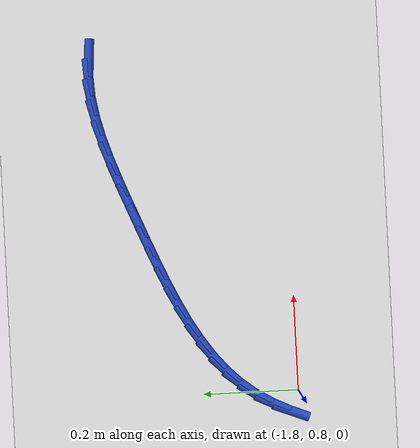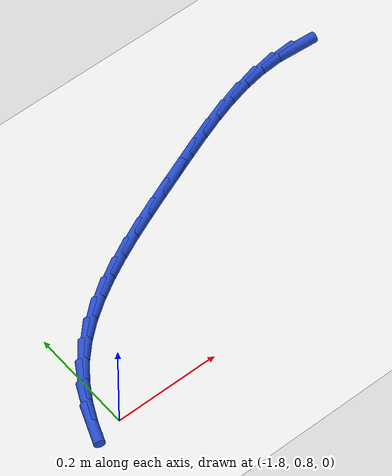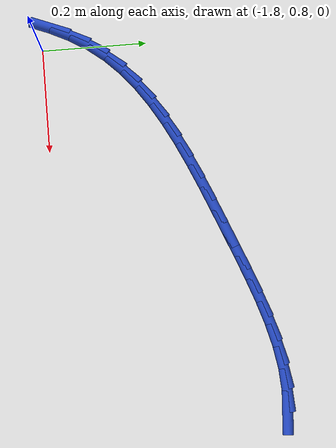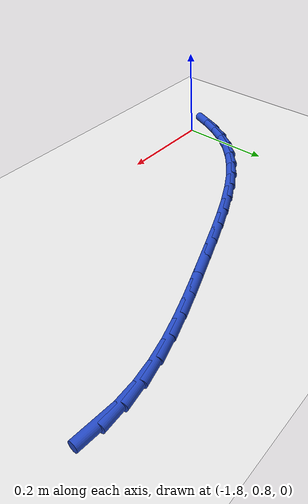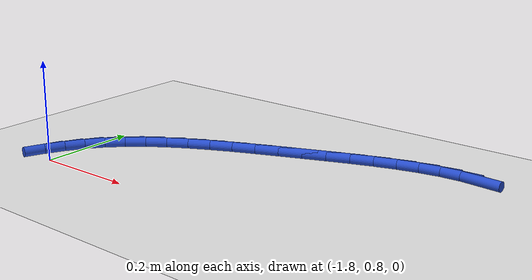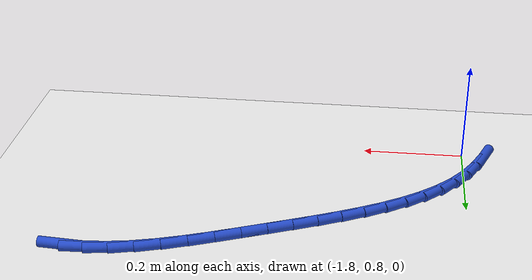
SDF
<sdf version="1.6">
 <world name="default">
  <model name="ground_plane">
   <static>1</static>
   <link name="link">
    <collision name="collision">
     <geometry><plane><normal>0 0 1</normal><size>100 100</size></plane></geometry>
     <surface><friction><ode><mu>100</mu><mu2>50</mu2></ode></friction></surface>
    </collision>
    <visual name="visual">
     <cast_shadows>0</cast_shadows>
     <geometry><plane><normal>0 0 1</normal><size>100 100</size></plane></geometry>
     <material>
      <script><uri>file://media/materials/scripts/gazebo.material</uri><name>Gazebo/WhiteGlow</name></script>
     </material>
    </visual>
   </link>
  </model>
  <model name="line">
   <link name="link_39">
    <pose>-1.0790798790291691 1.2066189303432555 0.01 0 1.57 -0.06929005652740972</pose>
    <collision name="collision">
     <geometry><cylinder><radius>0.01</radius><length>0.08</length></cylinder></geometry>
    </collision>
    <visual name="visual">
     <material>
      <script><name>Gazebo/Blue</name><uri>file://media/materials/scripts/gazebo.material</uri></script>
     </material>
     <geometry><cylinder><radius>0.01</radius><length>0.08</length></cylinder></geometry>
    </visual>
   </link>
   <link name="link_40">
    <pose>-1.1198511443910244 1.20944850344067 0.01 0 1.57 0.0634062857955353</pose>
    <collision name="collision">
     <geometry><cylinder><radius>0.01</radius><length>0.08</length></cylinder></geometry>
    </collision>
    <visual name="visual">
     <material>
      <script><name>Gazebo/Blue</name><uri>file://media/materials/scripts/gazebo.material</uri></script>
     </material>
     <geometry><cylinder><radius>0.01</radius><length>0.08</length></cylinder></geometry>
    </visual>
   </link>
   <link name="link_41">
    <pose>-1.161866000317936 1.2067809216424692 0.01 0 1.57 0.1687330409204674</pose>
    <collision name="collision">
     <geometry><cylinder><radius>0.01</radius><length>0.08</length></cylinder></geometry>
    </collision>
    <visual name="visual">
     <material>
      <script><name>Gazebo/Blue</name><uri>file://media/materials/scripts/gazebo.material</uri></script>
     </material>
     <geometry><cylinder><radius>0.01</radius><length>0.08</length></cylinder></geometry>
    </visual>
   </link>
   <link name="link_42">
    <pose>-1.204916245557059 1.1994471912357938 0.01 0 1.57 0.24925367229525305</pose>
    <collision name="collision">
     <geometry><cylinder><radius>0.01</radius><length>0.08</length></cylinder></geometry>
    </collision>
    <visual name="visual">
     <material>
      <script><name>Gazebo/Blue</name><uri>file://media/materials/scripts/gazebo.material</uri></script>
     </material>
     <geometry><cylinder><radius>0.01</radius><length>0.08</length></cylinder></geometry>
    </visual>
   </link>
   <link name="link_43">
    <pose>-1.2487936788555472 1.1882783185077836 0.01 0 1.57 0.308360027195604</pose>
    <collision name="collision">
     <geometry><cylinder><radius>0.01</radius><length>0.08</length></cylinder></geometry>
    </collision>
    <visual name="visual">
     <material>
      <script><name>Gazebo/Blue</name><uri>file://media/materials/scripts/gazebo.material</uri></script>
     </material>
     <geometry><cylinder><radius>0.01</radius><length>0.08</length></cylinder></geometry>
    </visual>
   </link>
   <link name="link_44">
    <pose>-1.2932900989605567 1.1741053097455787 0.01 0 1.57 0.3490904753763662</pose>
    <collision name="collision">
     <geometry><cylinder><radius>0.01</radius><length>0.08</length></cylinder></geometry>
    </collision>
    <visual name="visual">
     <material>
      <script><name>Gazebo/Blue</name><uri>file://media/materials/scripts/gazebo.material</uri></script>
     </material>
     <geometry><cylinder><radius>0.01</radius><length>0.08</length></cylinder></geometry>
    </visual>
   </link>
   <link name="link_45">
    <pose>-1.3381973046192415 1.1577591712363202 0.01 0 1.57 0.37369124129448106</pose>
    <collision name="collision">
     <geometry><cylinder><radius>0.01</radius><length>0.08</length></cylinder></geometry>
    </collision>
    <visual name="visual">
     <material>
      <script><name>Gazebo/Blue</name><uri>file://media/materials/scripts/gazebo.material</uri></script>
     </material>
     <geometry><cylinder><radius>0.01</radius><length>0.08</length></cylinder></geometry>
    </visual>
   </link>
   <link name="link_46">
    <pose>-1.3833070945787562 1.140070909267147 0.01 0 1.57 0.3835225798848618</pose>
    <collision name="collision">
     <geometry><cylinder><radius>0.01</radius><length>0.08</length></cylinder></geometry>
    </collision>
    <visual name="visual">
     <material>
      <script><name>Gazebo/Blue</name><uri>file://media/materials/scripts/gazebo.material</uri></script>
     </material>
     <geometry><cylinder><radius>0.01</radius><length>0.08</length></cylinder></geometry>
    </visual>
   </link>
   <link name="link_47">
    <pose>-1.4284112250598373 1.1218712558541355 0.01 0 1.57 0.38454559225733187</pose>
    <collision name="collision">
     <geometry><cylinder><radius>0.01</radius><length>0.08</length></cylinder></geometry>
    </collision>
    <visual name="visual">
     <material>
      <script><name>Gazebo/Blue</name><uri>file://media/materials/scripts/gazebo.material</uri></script>
     </material>
     <geometry><cylinder><radius>0.01</radius><length>0.08</length></cylinder></geometry>
    </visual>
   </link>
   <link name="link_48">
    <pose>-1.473259659576068 1.103721403964395 0.01 0 1.57 0.3926086089769305</pose>
    <collision name="collision">
     <geometry><cylinder><radius>0.01</radius><length>0.08</length></cylinder></geometry>
    </collision>
    <visual name="visual">
     <material>
      <script><name>Gazebo/Blue</name><uri>file://media/materials/scripts/gazebo.material</uri></script>
     </material>
     <geometry><cylinder><radius>0.01</radius><length>0.08</length></cylinder></geometry>
    </visual>
   </link>
   <link name="link_49">
    <pose>-1.517482337310516 1.0854084583065229 0.01 0 1.57 0.4109457855170791</pose>
    <collision name="collision">
     <geometry><cylinder><radius>0.01</radius><length>0.08</length></cylinder></geometry>
    </collision>
    <visual name="visual">
     <material>
      <script><name>Gazebo/Blue</name><uri>file://media/materials/scripts/gazebo.material</uri></script>
     </material>
     <geometry><cylinder><radius>0.01</radius><length>0.08</length></cylinder></geometry>
    </visual>
   </link>
   <link name="link_50">
    <pose>-1.5606877842269817 1.0665814205766624 0.01 0 1.57 0.4402944311834379</pose>
    <collision name="collision">
     <geometry><cylinder><radius>0.01</radius><length>0.08</length></cylinder></geometry>
    </collision>
    <visual name="visual">
     <material>
      <script><name>Gazebo/Blue</name><uri>file://media/materials/scripts/gazebo.material</uri></script>
     </material>
     <geometry><cylinder><radius>0.01</radius><length>0.08</length></cylinder></geometry>
    </visual>
   </link>
   <link name="link_51">
    <pose>-1.602484526289267 1.0468892924709565 0.01 0 1.57 0.48168179016255697</pose>
    <collision name="collision">
     <geometry><cylinder><radius>0.01</radius><length>0.08</length></cylinder></geometry>
    </collision>
    <visual name="visual">
     <material>
      <script><name>Gazebo/Blue</name><uri>file://media/materials/scripts/gazebo.material</uri></script>
     </material>
     <geometry><cylinder><radius>0.01</radius><length>0.08</length></cylinder></geometry>
    </visual>
   </link>
   <link name="link_52">
    <pose>-1.6424810894611723 1.0259810756855492 0.01 0 1.57 0.5363711308153888</pose>
    <collision name="collision">
     <geometry><cylinder><radius>0.01</radius><length>0.08</length></cylinder></geometry>
    </collision>
    <visual name="visual">
     <material>
      <script><name>Gazebo/Blue</name><uri>file://media/materials/scripts/gazebo.material</uri></script>
     </material>
     <geometry><cylinder><radius>0.01</radius><length>0.08</length></cylinder></geometry>
    </visual>
   </link>
   <link name="link_53">
    <pose>-1.6802859997064987 1.0035057719165836 0.01 0 1.57 0.6057188650561122</pose>
    <collision name="collision">
     <geometry><cylinder><radius>0.01</radius><length>0.08</length></cylinder></geometry>
    </collision>
    <visual name="visual">
     <material>
      <script><name>Gazebo/Blue</name><uri>file://media/materials/scripts/gazebo.material</uri></script>
     </material>
     <geometry><cylinder><radius>0.01</radius><length>0.08</length></cylinder></geometry>
    </visual>
   </link>
   <link name="link_54">
    <pose>-1.7155077829890462 0.9791123828602034 0.01 0 1.57 0.6908793814490248</pose>
    <collision name="collision">
     <geometry><cylinder><radius>0.01</radius><length>0.08</length></cylinder></geometry>
    </collision>
    <visual name="visual">
     <material>
      <script><name>Gazebo/Blue</name><uri>file://media/materials/scripts/gazebo.material</uri></script>
     </material>
     <geometry><cylinder><radius>0.01</radius><length>0.08</length></cylinder></geometry>
    </visual>
   </link>
   <link name="link_55">
    <pose>-1.7477549652726165 0.952449910212552 0.01 0 1.57 0.7923000830408778</pose>
    <collision name="collision">
     <geometry><cylinder><radius>0.01</radius><length>0.08</length></cylinder></geometry>
    </collision>
    <visual name="visual">
     <material>
      <script><name>Gazebo/Blue</name><uri>file://media/materials/scripts/gazebo.material</uri></script>
     </material>
     <geometry><cylinder><radius>0.01</radius><length>0.08</length></cylinder></geometry>
    </visual>
   </link>
   <link name="link_56">
    <pose>-1.776636072521011 0.9231673556697729 0.01 0 1.57 0.9087690044911634</pose>
    <collision name="collision">
     <geometry><cylinder><radius>0.01</radius><length>0.08</length></cylinder></geometry>
    </collision>
    <visual name="visual">
     <material>
      <script><name>Gazebo/Blue</name><uri>file://media/materials/scripts/gazebo.material</uri></script>
     </material>
     <geometry><cylinder><radius>0.01</radius><length>0.08</length></cylinder></geometry>
    </visual>
   </link>
   <link name="link_57">
    <pose>-1.8017681675880184 0.8909201994930536 0.01 0 1.57 1.0248843198372757</pose>
    <collision name="collision">
     <geometry><cylinder><radius>0.01</radius><length>0.08</length></cylinder></geometry>
    </collision>
    <visual name="visual">
     <material>
      <script><name>Gazebo/Blue</name><uri>file://media/materials/scripts/gazebo.material</uri></script>
     </material>
     <geometry><cylinder><radius>0.01</radius><length>0.08</length></cylinder></geometry>
    </visual>
   </link>
   <link name="link_58">
    <pose>-1.823179053414944 0.8556756287099347 0.01 0 1.57 1.120215197360469</pose>
    <collision name="collision">
     <geometry><cylinder><radius>0.01</radius><length>0.08</length></cylinder></geometry>
    </collision>
    <visual name="visual">
     <material>
      <script><name>Gazebo/Blue</name><uri>file://media/materials/scripts/gazebo.material</uri></script>
     </material>
     <geometry><cylinder><radius>0.01</radius><length>0.08</length></cylinder></geometry>
    </visual>
   </link>
   <link name="link_59">
    <pose>-1.841480819856811 0.817844240158773 0.01 0 1.57 1.1933163553659605</pose>
    <collision name="collision">
     <geometry><cylinder><radius>0.01</radius><length>0.08</length></cylinder></geometry>
    </collision>
    <visual name="visual">
     <material>
      <script><name>Gazebo/Blue</name><uri>file://media/materials/scripts/gazebo.material</uri></script>
     </material>
     <geometry><cylinder><radius>0.01</radius><length>0.08</length></cylinder></geometry>
    </visual>
   </link>
  </model>
 </world>
</sdf>
